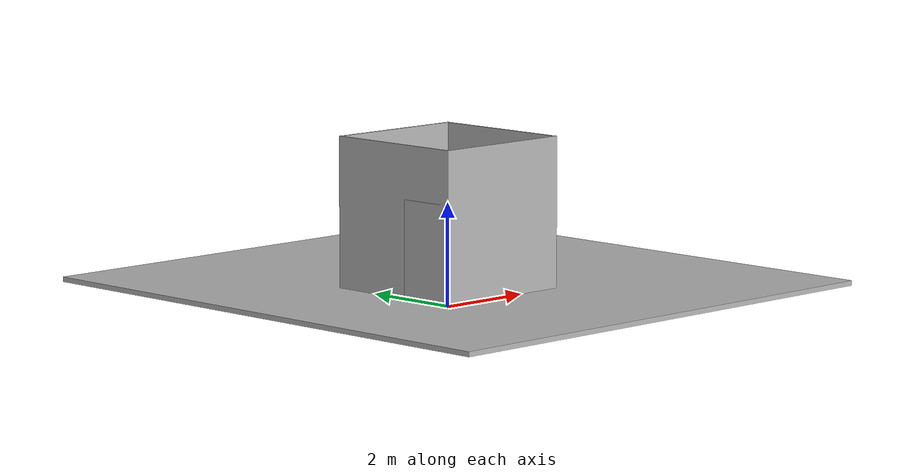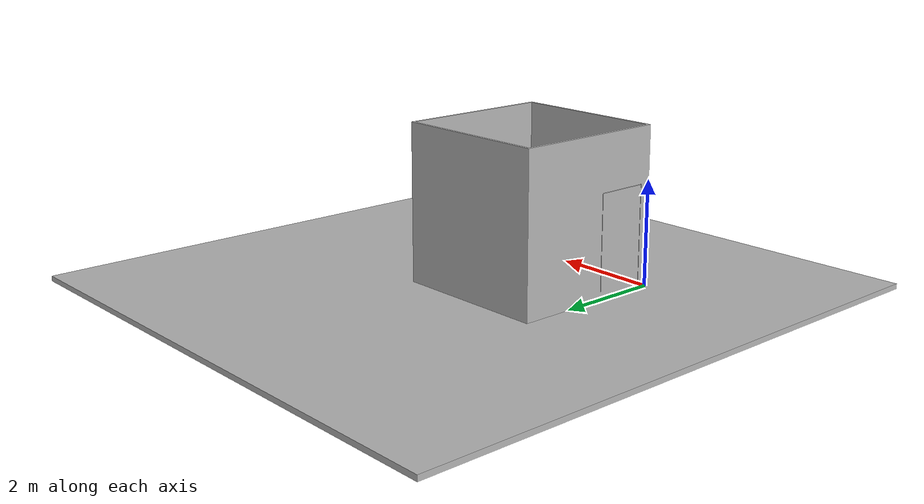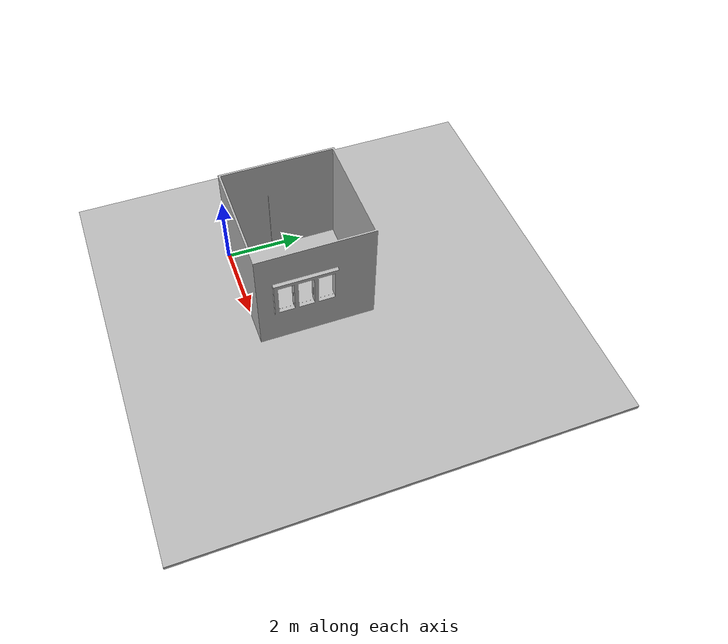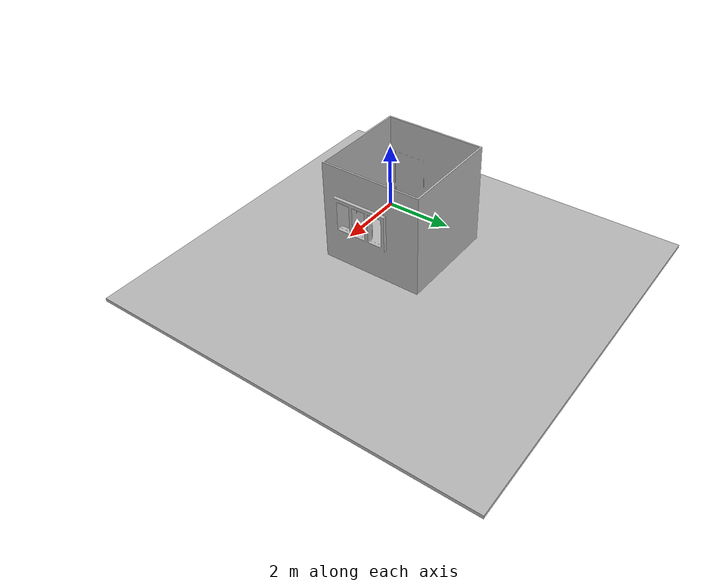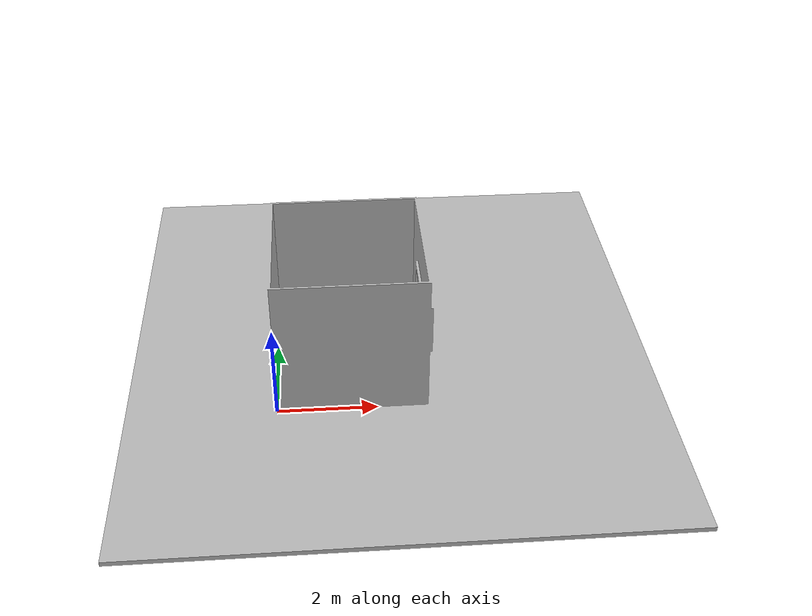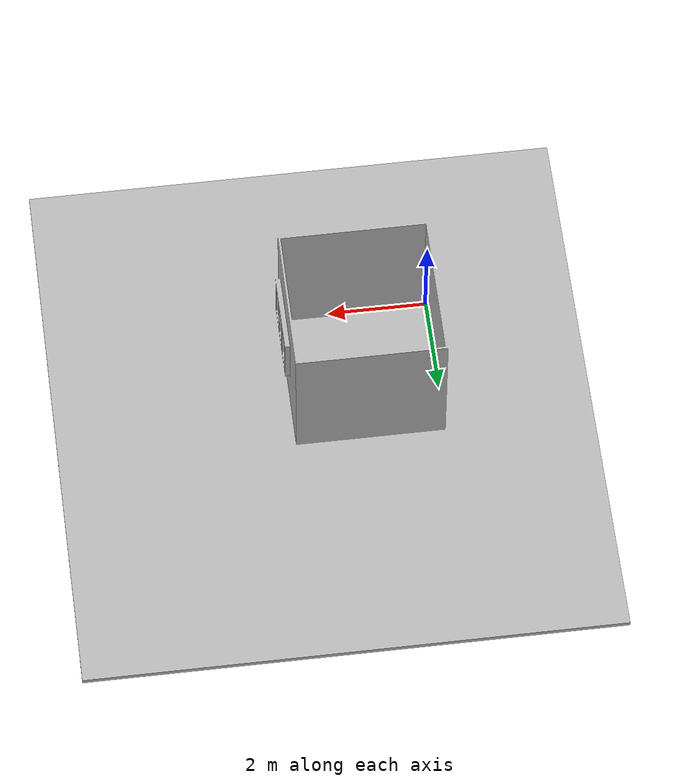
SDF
<sdf version='1.6'>
  <model name='Bathroom'>
  <static>true</static>
    <link name='base_link'>
      <collision name="collision">
        <geometry>
          <mesh>
            <scale>0.001 0.001 0.001</scale>
            <uri>model://Bathroom/meshes/base_link.stl</uri>
          </mesh>
        </geometry>
      </collision>
      <visual name='base_link_visual'>
        <pose frame=''>0 0 0 0 0 0</pose>
        <geometry>
          <mesh>
            <scale>0.001 0.001 0.001</scale>
            <uri>model://Bathroom/meshes/base_link.stl</uri>
          </mesh>
        </geometry>
      </visual>
    </link>
  </model>
</sdf>
